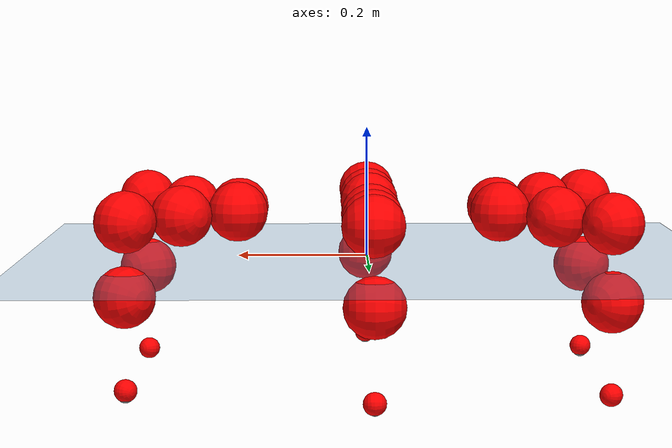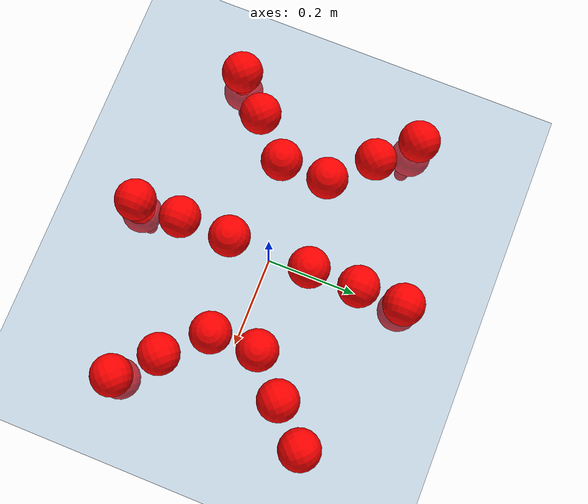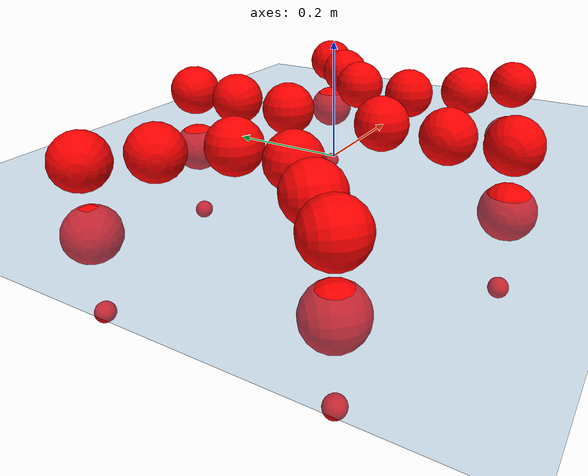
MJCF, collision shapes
<mujoco model="Golem">
  <compiler angle="radian" assetdir="assets" balanceinertia="true" inertiafromgeom="false"/>

  <option timestep="0.005" density="1.2" viscosity="2e-05"/>

  <size nkey="1"/>

  <visual>
    <quality shadowsize="8192"/>
    <map shadowclip="0.5"/>
  </visual>

  <default>
    <default class="/">
      <joint armature="0.01" damping="0.01" frictionloss="0.01"/>
      <geom contype="0" conaffinity="0" group="1" solref="-1000 -80"/>
      <site size="0.01 0.005 0.005" group="5"/>
      <general forcelimited="true" biastype="affine" gainprm="25" biasprm="0 -25 -0.5"/>
      <default class="visual">
        <geom type="mesh" group="2"/>
      </default>
      <default class="collision">
        <geom group="3"/>
      </default>
      <default class="foot">
        <geom size="0.01 0 0" condim="6" group="4" priority="1" solimp="0.015 1 0.01"/>
      </default>
      <default class="reward_collision_sphere">
        <geom group="5" rgba="1 0 0 1"/>
      </default>
    </default>
  </default>

  <asset>
    <texture type="skybox" colorspace="auto" name="//unnamed_texture_0" builtin="gradient" rgb1="0.95 0.95 0.95" rgb2="0.95 0.95 0.95" width="100" height="600"/>
    <texture type="2d" colorspace="auto" name="texplane" builtin="checker" rgb1="0.345 0.575 0.748" rgb2="0.345 0.575 0.748" markrgb="1 1 1" width="512" height="512"/>
    <material name="MatPlane" class="/" texture="texplane" texuniform="true" texrepeat="2 2" specular="0.9"/>
    <mesh name="body" class="/" file="body.stl" scale="0.001 0.001 0.001"/>
    <mesh name="coxa" class="/" file="coxa.stl" scale="0.001 0.001 0.001"/>
    <mesh name="femur" class="/" file="femur.stl" scale="0.001 0.001 0.001"/>
    <mesh name="tibia" class="/" file="tibia.stl" scale="0.001 0.001 0.001"/>
    <mesh name="tarsus" class="/" file="tarsus.stl" scale="0.001 0.001 0.001"/>
  </asset>

  <worldbody>
    <geom name="floor" class="/" size="100 100 0.125" type="plane" group="0" material="MatPlane"/>
    <light name="toplight_shadow" class="/" pos="0 0 5" dir="0.0990148 0.0990148 -0.990148" type="directional" ambient="0.04 0.04 0.04" diffuse="0.55 0.55 0.55" specular="0.12 0.12 0.12"/>
    <light name="toplight_fill" class="/" pos="0 0 5" dir="0.0990148 0.0990148 -0.990148" type="directional" castshadow="false" ambient="0.04 0.04 0.04" diffuse="0.3 0.3 0.3" specular="0.08 0.08 0.08"/>
    <body name="trunk" pos="-0.00283443 -0.000110824 -0.00248416" quat="1 7.0254e-06 -0.000253717 0.000102085">
      <inertial pos="0.00103796 -0.0011813 -0.0032245" quat="0.999948 -0.00962048 0.00112899 0.003162" mass="5.47499" diaginertia="0.0341327 0.00910215 0.0216271"/>
      <joint name="//unnamed_joint_0" type="free"/>
      <geom name="//unnamed_geom_1" class="/" pos="0 0 0.0749336" quat="1 0 0 0" type="mesh" rgba="0.9 0.9 0.9 1" mesh="body"/>
      <site name="imu" class="/" pos="0.17848 -0.00648011 0.105454" size="0.0114678"/>
      <camera name="track" class="/" pos="0 -1.96598 0" quat="0.707107 0.707107 0 0" mode="trackcom"/>
      <camera name="ego_camera" class="/" pos="0.167248 0 0.117084" quat="-0.5 -0.5 0.5 0.5"/>
      <body name="coxa_RR" pos="-0.229453 -0.0788172 0.0749019" quat="0.382772 -0.000217707 -8.7175e-05 -0.923843">
        <inertial pos="-0.00122469 0.000525457 -0.00181507" quat="0.999902 0.00227233 -0.0136171 0.00220592" mass="0.290184" diaginertia="0.0350667 0.00891737 0.02115"/>
        <joint name="coxa_joint_RR" class="/" pos="0 0 0" axis="-0.00744416 -0.00414213 -0.999964" range="-3.18041 3.18052" armature="0.010161" damping="0" frictionloss="0.00994561"/>
        <geom name="//unnamed_geom_2" class="/" type="mesh" rgba="0.2 0.2 0.2 1" mesh="coxa"/>
        <geom name="//unnamed_geom_3" class="reward_collision_sphere" size="0.0458713" pos="-0.0385956 0 0"/>
        <body name="femur_RR" pos="0.0765789 0.000568533 0.0012505" quat="0.500093 -0.499861 0.500199 0.499848">
          <inertial pos="-0.00192917 0.00209104 0.00139768" quat="1 0.000740045 -0.000227143 6.40677e-05" mass="0.301403" diaginertia="0.0362627 0.00927567 0.0224548"/>
          <joint name="femur_joint_RR" class="/" pos="0 0 0" axis="0.00211934 -0.00542324 -0.999983" range="-3.14738 3.1441" armature="0.0121277" damping="0.021909" frictionloss="0.0122439"/>
          <geom name="//unnamed_geom_4" class="/" type="mesh" rgba="0.9 0.9 0.9 1" mesh="femur"/>
          <geom name="//unnamed_geom_5" class="reward_collision_sphere" size="0.0458713"/>
          <body name="tibia_RR" pos="0.0012579 -0.105173 -0.00107488" quat="-0.000259155 1 0.000422285 0.000210062">
            <inertial pos="0.00249485 -0.000989136 0.000374595" quat="0.999986 -0.000684281 0.00518815 0.000285466" mass="0.310986" diaginertia="0.0349745 0.00921472 0.0221231"/>
            <joint name="tibia_joint_RR" class="/" pos="0 0 0" axis="-0.00134815 0.00548262 0.999984" range="-3.14131 3.1441" armature="0.0107677" damping="0.0191646" frictionloss="0.00986933"/>
            <geom name="//unnamed_geom_6" class="/" type="mesh" rgba="0.2 0.2 0.2 1" mesh="tibia"/>
            <geom name="//unnamed_geom_7" class="reward_collision_sphere" size="0.0458713"/>
            <body name="tarsus_RR" pos="0.111573 -0.000400547 -0.000309993" quat="1 0.000461384 -4.48202e-05 0.000237947">
              <inertial pos="0.0746978 -0.00110561 0.000666061" quat="0.503303 0.501114 0.489062 0.506348" mass="0.308544" diaginertia="0.035792 0.00900699 0.0216157"/>
              <joint name="tarsus_joint_RR" class="/" pos="0 0 0" axis="0.00396305 0.0083073 0.999958" range="-3.1696 3.16322" armature="0.0108881" damping="0.0158562" frictionloss="0.011307"/>
              <geom name="//unnamed_geom_8" class="/" type="mesh" rgba="0.9 0.9 0.9 1" mesh="tarsus"/>
              <geom name="foot_1" class="foot" size="0.0126465" pos="0.14409 0 0" quat="0 -0.707107 0 0.707107"/>
              <geom name="//unnamed_geom_10" class="reward_collision_sphere" size="0.0458713"/>
              <geom name="//unnamed_geom_11" class="reward_collision_sphere" size="0.0172017" pos="0.138301 0 0"/>
              <site name="foot_1" class="foot" pos="0.14409 0 0" quat="0 -0.707107 0 0.707107" size="0.0114678"/>
            </body>
          </body>
        </body>
      </body>
      <body name="coxa_RM" pos="-0.00229145 -0.131362 0.0788633" quat="0.70672 -0.00026234 0.00102446 -0.707493">
        <inertial pos="-0.00108705 -0.00269693 -0.000902682" quat="0.999964 -0.00737898 -0.00260146 0.00329592" mass="0.30886" diaginertia="0.0366983 0.00916607 0.022793"/>
        <joint name="coxa_joint_RM" class="/" pos="0 0 0" axis="-0.00567552 0.00442229 -0.999974" range="-3.13706 3.12767" armature="0.0117633" damping="0.00622201" frictionloss="0.011999"/>
        <geom name="//unnamed_geom_12" class="/" type="mesh" rgba="0.2 0.2 0.2 1" mesh="coxa"/>
        <geom name="//unnamed_geom_13" class="reward_collision_sphere" size="0.0458713" pos="-0.0385956 0 0"/>
        <body name="femur_RM" pos="0.0762538 -0.000126064 -0.00169093" quat="0.499664 -0.500783 0.499329 0.500223">
          <inertial pos="-0.00196651 -0.00276923 -0.00135748" quat="0.999987 -0.00179294 0.00102396 -0.0046328" mass="0.311203" diaginertia="0.0356492 0.00916766 0.0226195"/>
          <joint name="femur_joint_RM" class="/" pos="0 0 0" axis="-0.012823 0.00339891 -0.999912" stiffness="0.00501275" range="-3.13135 3.18167" armature="0.0124881" damping="0.018587" frictionloss="0.0101228"/>
          <geom name="//unnamed_geom_14" class="/" type="mesh" rgba="0.9 0.9 0.9 1" mesh="femur"/>
          <geom name="//unnamed_geom_15" class="reward_collision_sphere" size="0.0458713"/>
          <body name="tibia_RM" pos="-0.00313546 -0.102989 0.00122115" quat="-0.000477471 0.999999 0.000832415 0.000692742">
            <inertial pos="-0.000728156 0.000366849 0.000943097" quat="0.999999 -0.00062184 -0.000118763 0.000864645" mass="0.304213" diaginertia="0.0372851 0.00969075 0.0222207"/>
            <joint name="tibia_joint_RM" class="/" pos="0 0 0" axis="-0.00982443 0.00195263 0.99995" range="-3.10655 3.0891" armature="0.0119082" damping="0" frictionloss="0.0127098"/>
            <geom name="//unnamed_geom_16" class="/" type="mesh" rgba="0.2 0.2 0.2 1" mesh="tibia"/>
            <geom name="//unnamed_geom_17" class="reward_collision_sphere" size="0.0458713"/>
            <body name="tarsus_RM" pos="0.109484 0.000106467 -0.00189357" quat="1 -0.000231604 0.000317971 1.53617e-05">
              <inertial pos="0.0768349 0.000531761 0.00308409" quat="0.509208 0.494316 0.504131 0.49215" mass="0.305541" diaginertia="0.0370751 0.00933912 0.0219293"/>
              <joint name="tarsus_joint_RM" class="/" pos="0 0 0" axis="-0.00516815 0.00411587 0.999978" range="-3.18857 3.10215" armature="0.0115764" damping="0.0129499" frictionloss="0.0112279"/>
              <geom name="//unnamed_geom_18" class="/" type="mesh" rgba="0.9 0.9 0.9 1" mesh="tarsus"/>
              <geom name="foot_2" class="foot" size="0.0120004" pos="0.14409 0 0" quat="0 -0.707107 0 0.707107"/>
              <geom name="//unnamed_geom_20" class="reward_collision_sphere" size="0.0458713"/>
              <geom name="//unnamed_geom_21" class="reward_collision_sphere" size="0.0172017" pos="0.138301 0 0"/>
              <site name="foot_2" class="foot" pos="0.14409 0 0" quat="0 -0.707107 0 0.707107" size="0.0114678"/>
            </body>
          </body>
        </body>
      </body>
      <body name="coxa_RF" pos="0.230443 -0.0792006 0.0738078" quat="0.924129 -0.000927961 0.000212483 -0.38208">
        <inertial pos="0.00183372 -0.000962547 6.13455e-05" quat="0.99999 0.00402702 -0.000181503 -0.00167534" mass="0.30918" diaginertia="0.0358547 0.00945557 0.0227049"/>
        <joint name="coxa_joint_RF" class="/" pos="0 0 0" axis="-0.00911034 -0.0073156 -0.999932" range="-3.14206 3.19475" armature="0.0120527" damping="0" frictionloss="0.0111907"/>
        <geom name="//unnamed_geom_22" class="/" type="mesh" rgba="0.2 0.2 0.2 1" mesh="coxa"/>
        <geom name="//unnamed_geom_23" class="reward_collision_sphere" size="0.0458713" pos="-0.0385956 0 0"/>
        <body name="femur_RF" pos="0.0781396 -0.00184211 -0.00311892" quat="0.500305 -0.500088 0.499911 0.499695">
          <inertial pos="-0.000742581 -0.000108899 0.00278094" quat="0.999994 0.00171947 0.002867 0.000798604" mass="0.300398" diaginertia="0.0353675 0.00930414 0.022899"/>
          <joint name="femur_joint_RF" class="/" pos="0 0 0" axis="-0.000342666 7.52014e-05 -1" range="-3.09796 3.13989" armature="0.0115268" damping="0.00911083" frictionloss="0.00985104"/>
          <geom name="//unnamed_geom_24" class="/" type="mesh" rgba="0.9 0.9 0.9 1" mesh="femur"/>
          <geom name="//unnamed_geom_25" class="reward_collision_sphere" size="0.0458713"/>
          <body name="tibia_RF" pos="-0.00337741 -0.106806 0.0024423" quat="3.00115e-07 1 -7.82939e-05 -0.000212657">
            <inertial pos="0.00292359 -0.00227408 -0.000269087" quat="0.999964 -0.00549346 0.00254499 0.00588516" mass="0.298633" diaginertia="0.0346462 0.00885778 0.0220228"/>
            <joint name="tibia_joint_RF" class="/" pos="0 0 0" axis="-0.00563923 0.0116752 0.999916" range="-3.14262 3.13473" armature="0.0113842" damping="0.0170805" frictionloss="0.0120658"/>
            <geom name="//unnamed_geom_26" class="/" type="mesh" rgba="0.2 0.2 0.2 1" mesh="tibia"/>
            <geom name="//unnamed_geom_27" class="reward_collision_sphere" size="0.0458713"/>
            <body name="tarsus_RF" pos="0.11389 0.000390789 -0.00091648" quat="0.999999 -0.00114064 0.000383754 -0.000568254">
              <inertial pos="0.0797987 -0.0022473 0.00151979" quat="0.496378 0.500433 0.498806 0.504349" mass="0.296789" diaginertia="0.0356722 0.00892787 0.0228278"/>
              <joint name="tarsus_joint_RF" class="/" pos="0 0 0" axis="0.0138944 0.00492633 0.999891" range="-3.19583 3.14065" armature="0.011387" damping="0.0156142" frictionloss="0.0109503"/>
              <geom name="//unnamed_geom_28" class="/" type="mesh" rgba="0.9 0.9 0.9 1" mesh="tarsus"/>
              <geom name="foot_3" class="foot" size="0.0112926" pos="0.14409 0 0" quat="0 -0.707107 0 0.707107"/>
              <geom name="//unnamed_geom_30" class="reward_collision_sphere" size="0.0458713"/>
              <geom name="//unnamed_geom_31" class="reward_collision_sphere" size="0.0172017" pos="0.138301 0 0"/>
              <site name="foot_3" class="foot" pos="0.14409 0 0" quat="0 -0.707107 0 0.707107" size="0.0114678"/>
            </body>
          </body>
        </body>
      </body>
      <body name="coxa_LR" pos="-0.227505 0.0828661 0.0761794" quat="0.381954 -0.00018976 0.000804322 0.924181">
        <inertial pos="0.000443975 -0.00034019 0.00262282" quat="0.999986 0.00396142 0.00197679 0.00288564" mass="0.304161" diaginertia="0.0359345 0.00945248 0.0218394"/>
        <joint name="coxa_joint_LR" class="/" pos="0 0 0" axis="0.000244515 -0.000527763 -1" range="-3.18514 3.16241" armature="0.0103808" damping="0.00608083" frictionloss="0.010349"/>
        <geom name="//unnamed_geom_32" class="/" type="mesh" rgba="0.2 0.2 0.2 1" mesh="coxa"/>
        <geom name="//unnamed_geom_33" class="reward_collision_sphere" size="0.0458713" pos="-0.0385956 0 0"/>
        <body name="femur_LR" pos="0.0756015 -0.00348203 0.000642639" quat="0.500193 -0.500153 0.499816 0.499838">
          <inertial pos="0.00240865 -0.00224534 0.00274681" quat="0.999973 0.00343184 0.00255567 0.00598916" mass="0.296753" diaginertia="0.0355987 0.0091749 0.0222311"/>
          <joint name="femur_joint_LR" class="/" pos="0 0 0" axis="0.000489957 0.00778565 0.99997" range="-3.16939 3.09617" armature="0.0102847" damping="0" frictionloss="0.0115044"/>
          <geom name="//unnamed_geom_34" class="/" type="mesh" rgba="0.9 0.9 0.9 1" mesh="femur"/>
          <geom name="//unnamed_geom_35" class="reward_collision_sphere" size="0.0458713"/>
          <body name="tibia_LR" pos="0.00273229 -0.10506 -0.000137089" quat="0.000477956 0.999999 0.000912704 -0.00065121">
            <inertial pos="0.00249668 -0.00248149 0.00155883" quat="0.999998 -0.00084014 0.000745518 -0.00143977" mass="0.313243" diaginertia="0.0354908 0.0095127 0.0213218"/>
            <joint name="tibia_joint_LR" class="/" pos="0 0 0" axis="-0.00195081 -0.0115138 -0.999932" range="-3.15831 3.08753" armature="0.010617" damping="0.0117475" frictionloss="0.0117223"/>
            <geom name="//unnamed_geom_36" class="/" type="mesh" rgba="0.2 0.2 0.2 1" mesh="tibia"/>
            <geom name="//unnamed_geom_37" class="reward_collision_sphere" size="0.0458713"/>
            <body name="tarsus_LR" pos="0.115748 -0.00105676 -0.00242827" quat="0.999999 -0.000221482 0.000621746 0.000831732">
              <inertial pos="0.0752734 -0.00247513 -0.00107404" quat="0.499997 0.499887 0.499971 0.500145" mass="0.302128" diaginertia="0.0356967 0.00903473 0.0230278"/>
              <joint name="tarsus_joint_LR" class="/" pos="0 0 0" axis="-0.00126454 -0.00408368 -0.999991" range="-3.13195 3.12399" armature="0.0126062" damping="0.0289064" frictionloss="0.0128199"/>
              <geom name="//unnamed_geom_38" class="/" type="mesh" rgba="0.9 0.9 0.9 1" mesh="tarsus"/>
              <geom name="foot_4" class="foot" size="0.011169" pos="0.14409 0 0" quat="0.707107 0 -0.707107 0"/>
              <geom name="//unnamed_geom_40" class="reward_collision_sphere" size="0.0458713"/>
              <geom name="//unnamed_geom_41" class="reward_collision_sphere" size="0.0172017" pos="0.138301 0 0"/>
              <site name="foot_4" class="foot" pos="0.14409 0 0" quat="0.707107 0 -0.707107 0" size="0.0114678"/>
            </body>
          </body>
        </body>
      </body>
      <body name="coxa_LM" pos="-0.00214323 0.128599 0.0767768" quat="0.707143 0.000176613 -0.000348489 0.70707">
        <inertial pos="0.0025997 -1.94427e-05 0.00195499" quat="0.999973 0.00573559 0.0043173 -0.001526" mass="0.293058" diaginertia="0.034654 0.00890439 0.0211979"/>
        <joint name="coxa_joint_LM" class="/" pos="0 0 0" axis="-0.00726399 -0.00143715 -0.999973" stiffness="0.00803936" range="-3.1595 3.13936" armature="0.0114829" damping="0" frictionloss="0.00989366"/>
        <geom name="//unnamed_geom_42" class="/" type="mesh" rgba="0.2 0.2 0.2 1" mesh="coxa"/>
        <geom name="//unnamed_geom_43" class="reward_collision_sphere" size="0.0458713" pos="-0.0385956 0 0"/>
        <body name="femur_LM" pos="0.0737328 0.000404486 0.00172537" quat="0.499844 -0.500056 0.499932 0.500169">
          <inertial pos="0.00276542 6.73366e-05 -0.00260212" quat="0.999984 -0.000230189 -0.00513371 -0.00247964" mass="0.30665" diaginertia="0.035988 0.0096278 0.0234974"/>
          <joint name="femur_joint_LM" class="/" pos="0 0 0" axis="0.00191826 -0.00948132 0.999953" range="-3.09937 3.09301" armature="0.0112766" damping="0.0132731" frictionloss="0.0114257"/>
          <geom name="//unnamed_geom_44" class="/" type="mesh" rgba="0.9 0.9 0.9 1" mesh="femur"/>
          <geom name="//unnamed_geom_45" class="reward_collision_sphere" size="0.0458713"/>
          <body name="tibia_LM" pos="-0.00195474 -0.101858 -0.00108647" quat="-0.000465254 1 0.000119049 -0.000232455">
            <inertial pos="-0.00203398 0.000244902 -3.12922e-05" quat="0.999983 -0.00418101 -5.52882e-05 -0.00401265" mass="0.297058" diaginertia="0.0347267 0.00899491 0.0224638"/>
            <joint name="tibia_joint_LM" class="/" pos="0 0 0" axis="-0.000775995 -0.0018835 -0.999998" stiffness="0.0120399" range="-3.1245 3.09463" armature="0.00983137" damping="0.0145472" frictionloss="0.0108854"/>
            <geom name="//unnamed_geom_46" class="/" type="mesh" rgba="0.2 0.2 0.2 1" mesh="tibia"/>
            <geom name="//unnamed_geom_47" class="reward_collision_sphere" size="0.0458713"/>
            <body name="tarsus_LM" pos="0.115965 0.00218568 -0.00196092" quat="1 0.00071637 0.000182583 5.28972e-05">
              <inertial pos="0.074824 0.000156694 -0.00274418" quat="0.510162 0.497334 0.499758 0.49258" mass="0.303037" diaginertia="0.0342788 0.00918014 0.0214285"/>
              <joint name="tarsus_joint_LM" class="/" pos="0 0 0" axis="-0.00242182 -0.00103902 -0.999997" range="-3.08384 3.13831" armature="0.0121077" damping="0.0178778" frictionloss="0.0108608"/>
              <geom name="//unnamed_geom_48" class="/" type="mesh" rgba="0.9 0.9 0.9 1" mesh="tarsus"/>
              <geom name="foot_5" class="foot" size="0.0119341" pos="0.14409 0 0" quat="0.707107 0 -0.707107 0"/>
              <geom name="//unnamed_geom_50" class="reward_collision_sphere" size="0.0458713"/>
              <geom name="//unnamed_geom_51" class="reward_collision_sphere" size="0.0172017" pos="0.138301 0 0"/>
              <site name="foot_5" class="foot" pos="0.14409 0 0" quat="0.707107 0 -0.707107 0" size="0.0114678"/>
            </body>
          </body>
        </body>
      </body>
      <body name="coxa_LF" pos="0.228484 0.0807736 0.0767881" quat="0.923822 0.000674834 -0.000395106 0.382821">
        <inertial pos="-0.000131938 -0.00138632 -0.000578376" quat="0.99993 0.000861317 -0.0117711 -0.000613331" mass="0.309367" diaginertia="0.0360305 0.00932095 0.0224345"/>
        <joint name="coxa_joint_LF" class="/" pos="0 0 0" axis="-0.007386 0.00617943 -0.999954" range="-3.08295 3.13226" armature="0.0128864" damping="0.0173822" frictionloss="0.00995659"/>
        <geom name="//unnamed_geom_52" class="/" type="mesh" rgba="0.2 0.2 0.2 1" mesh="coxa"/>
        <geom name="//unnamed_geom_53" class="reward_collision_sphere" size="0.0458713" pos="-0.0385956 0 0"/>
        <body name="femur_LF" pos="0.0739789 -0.0018403 0.00100744" quat="0.500074 -0.49996 0.499937 0.50003">
          <inertial pos="0.000645347 0.00273856 -0.00237993" quat="0.999999 0.000634571 0.00034653 0.00128145" mass="0.311302" diaginertia="0.0370809 0.00945602 0.0219516"/>
          <joint name="femur_joint_LF" class="/" pos="0 0 0" axis="-0.00536971 -0.00150726 0.999984" stiffness="0.00298583" range="-3.13965 3.14121" armature="0.0130384" damping="0" frictionloss="0.0117546"/>
          <geom name="//unnamed_geom_54" class="/" type="mesh" rgba="0.9 0.9 0.9 1" mesh="femur"/>
          <geom name="//unnamed_geom_55" class="reward_collision_sphere" size="0.0458713"/>
          <body name="tibia_LF" pos="0.00105244 -0.108754 0.000790779" quat="-7.85161e-05 1 -0.000162775 -0.000200885">
            <inertial pos="0.00195943 0.00204827 0.00122696" quat="0.999979 -0.0055078 0.00233272 -0.00242816" mass="0.299882" diaginertia="0.0346513 0.00945544 0.0222748"/>
            <joint name="tibia_joint_LF" class="/" pos="0 0 0" axis="-0.00642125 -0.00626607 -0.99996" stiffness="0.0101099" range="-3.08309 3.09815" armature="0.0115422" damping="0.00129718" frictionloss="0.00986323"/>
            <geom name="//unnamed_geom_56" class="/" type="mesh" rgba="0.2 0.2 0.2 1" mesh="tibia"/>
            <geom name="//unnamed_geom_57" class="reward_collision_sphere" size="0.0458713"/>
            <body name="tarsus_LF" pos="0.11037 0.00237603 0.000415862" quat="1 -8.32831e-05 -0.000172428 -0.000132833">
              <inertial pos="0.0746383 -0.000159993 0.00198696" quat="0.492362 0.509689 0.4957 0.502074" mass="0.298451" diaginertia="0.0360922 0.0091789 0.0222485"/>
              <joint name="tarsus_joint_LF" class="/" pos="0 0 0" axis="-0.00204282 -5.07042e-05 -0.999998" stiffness="0.00799337" range="-3.19144 3.10111" armature="0.0131" damping="0.0119471" frictionloss="0.012981"/>
              <geom name="//unnamed_geom_58" class="/" type="mesh" rgba="0.9 0.9 0.9 1" mesh="tarsus"/>
              <geom name="foot_6" class="foot" size="0.0125343" pos="0.14409 0 0" quat="0.707107 0 -0.707107 0"/>
              <geom name="//unnamed_geom_60" class="reward_collision_sphere" size="0.0458713"/>
              <geom name="//unnamed_geom_61" class="reward_collision_sphere" size="0.0172017" pos="0.138301 0 0"/>
              <site name="foot_6" class="foot" pos="0.14409 0 0" quat="0.707107 0 -0.707107 0" size="0.0114678"/>
            </body>
          </body>
        </body>
      </body>
    </body>
  </worldbody>

  <contact>
    <pair class="/" geom1="floor" geom2="foot_1" name="//unnamed_contact_0"/>
    <pair class="/" geom1="floor" geom2="foot_2" name="//unnamed_contact_1"/>
    <pair class="/" geom1="floor" geom2="foot_3" name="//unnamed_contact_2"/>
    <pair class="/" geom1="floor" geom2="foot_4" name="//unnamed_contact_3"/>
    <pair class="/" geom1="floor" geom2="foot_5" name="//unnamed_contact_4"/>
    <pair class="/" geom1="floor" geom2="foot_6" name="//unnamed_contact_5"/>
  </contact>

  <actuator>
    <general name="coxa_joint_RR" class="/" joint="coxa_joint_RR" forcerange="-8.33538 8.33538" gainprm="28.899" biasprm="0 -28.899 -0.613597"/>
    <general name="femur_joint_RR" class="/" joint="femur_joint_RR" forcerange="-8.46689 8.46689" gainprm="28.899" biasprm="0 -28.899 -0.613597"/>
    <general name="tibia_joint_RR" class="/" joint="tibia_joint_RR" forcerange="-8.407 8.407" gainprm="28.899" biasprm="0 -28.899 -0.613597"/>
    <general name="tarsus_joint_RR" class="/" joint="tarsus_joint_RR" forcerange="-8.0426 8.0426" gainprm="28.899" biasprm="0 -28.899 -0.613597"/>
    <general name="coxa_joint_RM" class="/" joint="coxa_joint_RM" forcerange="-8.70083 8.70083" gainprm="28.899" biasprm="0 -28.899 -0.613597"/>
    <general name="femur_joint_RM" class="/" joint="femur_joint_RM" forcerange="-8.46123 8.46123" gainprm="28.899" biasprm="0 -28.899 -0.613597"/>
    <general name="tibia_joint_RM" class="/" joint="tibia_joint_RM" forcerange="-8.45823 8.45823" gainprm="28.899" biasprm="0 -28.899 -0.613597"/>
    <general name="tarsus_joint_RM" class="/" joint="tarsus_joint_RM" forcerange="-7.49388 7.49388" gainprm="28.899" biasprm="0 -28.899 -0.613597"/>
    <general name="coxa_joint_RF" class="/" joint="coxa_joint_RF" forcerange="-8.6839 8.6839" gainprm="28.899" biasprm="0 -28.899 -0.613597"/>
    <general name="femur_joint_RF" class="/" joint="femur_joint_RF" forcerange="-8.38918 8.38918" gainprm="28.899" biasprm="0 -28.899 -0.613597"/>
    <general name="tibia_joint_RF" class="/" joint="tibia_joint_RF" forcerange="-8.31456 8.31456" gainprm="28.899" biasprm="0 -28.899 -0.613597"/>
    <general name="tarsus_joint_RF" class="/" joint="tarsus_joint_RF" forcerange="-8.25067 8.25067" gainprm="28.899" biasprm="0 -28.899 -0.613597"/>
    <general name="coxa_joint_LR" class="/" joint="coxa_joint_LR" forcerange="-7.93917 7.93917" gainprm="28.899" biasprm="0 -28.899 -0.613597"/>
    <general name="femur_joint_LR" class="/" joint="femur_joint_LR" forcerange="-7.57397 7.57397" gainprm="28.899" biasprm="0 -28.899 -0.613597"/>
    <general name="tibia_joint_LR" class="/" joint="tibia_joint_LR" forcerange="-8.16669 8.16669" gainprm="28.899" biasprm="0 -28.899 -0.613597"/>
    <general name="tarsus_joint_LR" class="/" joint="tarsus_joint_LR" forcerange="-8.4073 8.4073" gainprm="28.899" biasprm="0 -28.899 -0.613597"/>
    <general name="coxa_joint_LM" class="/" joint="coxa_joint_LM" forcerange="-8.3441 8.3441" gainprm="28.899" biasprm="0 -28.899 -0.613597"/>
    <general name="femur_joint_LM" class="/" joint="femur_joint_LM" forcerange="-7.64257 7.64257" gainprm="28.899" biasprm="0 -28.899 -0.613597"/>
    <general name="tibia_joint_LM" class="/" joint="tibia_joint_LM" forcerange="-8.40053 8.40053" gainprm="28.899" biasprm="0 -28.899 -0.613597"/>
    <general name="tarsus_joint_LM" class="/" joint="tarsus_joint_LM" forcerange="-9.21468 9.21468" gainprm="28.899" biasprm="0 -28.899 -0.613597"/>
    <general name="coxa_joint_LF" class="/" joint="coxa_joint_LF" forcerange="-8.04468 8.04468" gainprm="28.899" biasprm="0 -28.899 -0.613597"/>
    <general name="femur_joint_LF" class="/" joint="femur_joint_LF" forcerange="-9.25888 9.25888" gainprm="28.899" biasprm="0 -28.899 -0.613597"/>
    <general name="tibia_joint_LF" class="/" joint="tibia_joint_LF" forcerange="-8.30882 8.30882" gainprm="28.899" biasprm="0 -28.899 -0.613597"/>
    <general name="tarsus_joint_LF" class="/" joint="tarsus_joint_LF" forcerange="-8.02942 8.02942" gainprm="28.899" biasprm="0 -28.899 -0.613597"/>
  </actuator>

  <sensor>
    <gyro site="imu" name="imu_angular_velocity"/>
    <velocimeter site="imu" name="imu_linear_velocity"/>
    <framelinvel objtype="site" objname="foot_1" name="foot_1_global_linear_velocity"/>
    <framelinvel objtype="site" objname="foot_2" name="foot_2_global_linear_velocity"/>
    <framelinvel objtype="site" objname="foot_3" name="foot_3_global_linear_velocity"/>
    <framelinvel objtype="site" objname="foot_4" name="foot_4_global_linear_velocity"/>
    <framelinvel objtype="site" objname="foot_5" name="foot_5_global_linear_velocity"/>
    <framelinvel objtype="site" objname="foot_6" name="foot_6_global_linear_velocity"/>
  </sensor>

  <keyframe>
    <key name="home" qpos="0 0 0.1457 1 0 0 0 0 0 0 0 0 0 0 0 0 0 0 0 0 0 0 0 0 0 0 0 0 0 0 0"/>
  </keyframe>
</mujoco>
